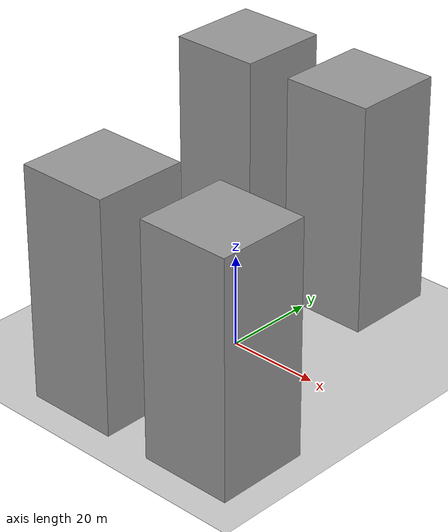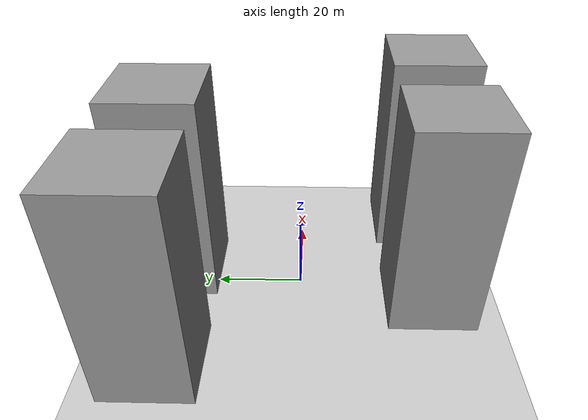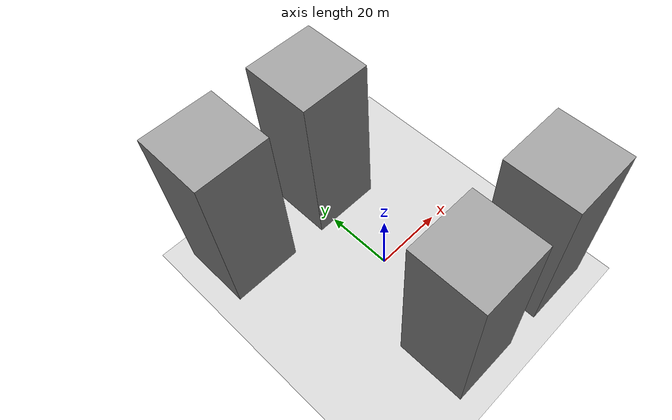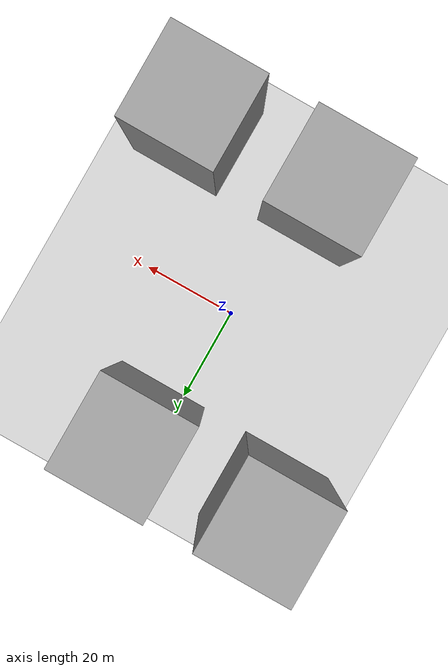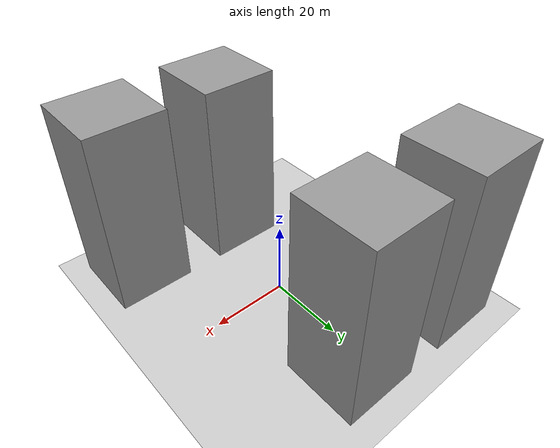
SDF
<sdf version='1.7'>
  <world name='default'>
    <scene>
      <ambient>0.4 0.4 0.4 1</ambient>
      <background>0.7 0.7 0.7 1</background>
      <shadows>1</shadows>
      <sky>
        <clouds>
          <speed>12</speed>
        </clouds>
      </sky>
      <fog>
        <type>linear</type>
        <start>10</start>
        <end>500</end>
        <density>1</density>
      </fog>
    </scene>

    <include>
      <uri>model://ground_plane</uri>
    </include>

    <include>
      <uri>model://sun</uri>
    </include>

    <model name="building_0">
      <include>
        <uri>../models/building</uri>
        <pose>-5 -30 0 0 0 0</pose>
        <name>building_0</name>
      </include>
    </model>
    <model name="building_1">
      <include>
        <uri>model://building</uri>
        <pose>25 -30 0 0 0 0</pose>
        <name>building_1</name>
      </include>
    </model>
    <model name="building_2">
      <include>
        <uri>model://building</uri>
        <pose>5 30 0 0 0 0</pose>
        <name>building_2</name>
      </include>
    </model>
    <model name="building_3">
      <include>
        <uri>model://building</uri>
        <pose>-25 30 0 0 0 0</pose>
        <name>building_3</name>
      </include>
    </model>

    <model name="laser_0">
      <static>false</static>
      <pose>0 0 1 0 0 0</pose>
      <link name="laser_link">
        <visual name="visual">
          <geometry>
            <box>
              <size>0.2 0.1 0.1</size>
            </box>
          </geometry>
        </visual>
        <collision name='collision'>
          <laser_retro>0</laser_retro>
          <max_contacts>10</max_contacts>
          <pose>0 0 0 0 -0 0</pose>
          <geometry>
            <box>
              <size>0.2 .1 .1</size>
            </box>
          </geometry>
        </collision>
        <sensor name="laser" type="ray">
          <pose>0 0 0.1 0 0 0</pose>
          <visualize>false</visualize>
          <update_rate>20</update_rate>
          <ray>
            <scan>
              <horizontal>
                <samples>16</samples>
                <resolution>1</resolution>
                <min_angle>0</min_angle>
                <max_angle>0</max_angle>
              </horizontal>
            </scan>
            <range>
              <min>0.05</min>
              <max>100.0</max>
              <resolution>0.02</resolution>
            </range>
            <noise>
              <type>gaussian</type>
              <mean>0.0</mean>
              <stddev>0.0</stddev>
            </noise>
          </ray>
          <plugin name="Multipath Plugin" filename="libMultipathSensorPlugin.so">
            <topicName>/multipath/scan</topicName>
            <offsetTopicName>/multipath/offset</offsetTopicName>
            <satRayTopicName>/multipath/sat_ray</satRayTopicName>
            <frameName>laser_0</frameName>
            <errorScale>1</errorScale>
            <disableNoise>1</disableNoise>
            <satNum>8</satNum>
            <satAzimuth>0 0.2 0.5 1.57 -1.57 -1 -0.2 3.14</satAzimuth>
            <satElevation>0.8 0.8 0.8 0.2 0.8 0.8 0.8 0.8</satElevation>
          </plugin>
        </sensor>
        <self_collide>0</self_collide>
      </link>
    </model>

  </world>
</sdf>
<!-- vim: set et fenc=utf-8 ff=unix sts=0 sw=2 ts=2 ft=xml: -->

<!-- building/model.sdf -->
<sdf version='1.7'>
  <model name='test_building'>
    <static>true</static>
    <pose>0 0 0 0 0 0</pose>
    <link name='link_0'>
      <inertial>
        <mass>2000.29</mass>
        <inertia>
          <ixx>326735</ixx>
          <ixy>0</ixy>
          <ixz>0</ixz>
          <iyy>327376</iyy>
          <iyz>0</iyz>
          <izz>13025.9</izz>
        </inertia>
        <pose>0 0 0 0 -0 0</pose>
      </inertial>
      <pose>-0 -1e-05 0 0 -0 0</pose>
      <visual name='visual'>
        <pose>0 0 25 0 -0 0</pose>
        <geometry>
          <box>
            <size>20 20 50</size>
          </box>
        </geometry>
        <material>
          <lighting>1</lighting>
          <script>
            <uri>file://media/materials/scripts/gazebo.material</uri>
            <name>Gazebo/Grey</name>
          </script>
          <shader type='pixel'/>
        </material>
        <transparency>0</transparency>
        <cast_shadows>1</cast_shadows>
      </visual>
      <collision name='collision'>
        <laser_retro>0</laser_retro>
        <max_contacts>10</max_contacts>
        <pose>0 0 25 0 -0 0</pose>
        <geometry>
          <box>
            <size>20 20 50</size>
          </box>
        </geometry>
      </collision>
    </link>]
  </model>
</sdf>
